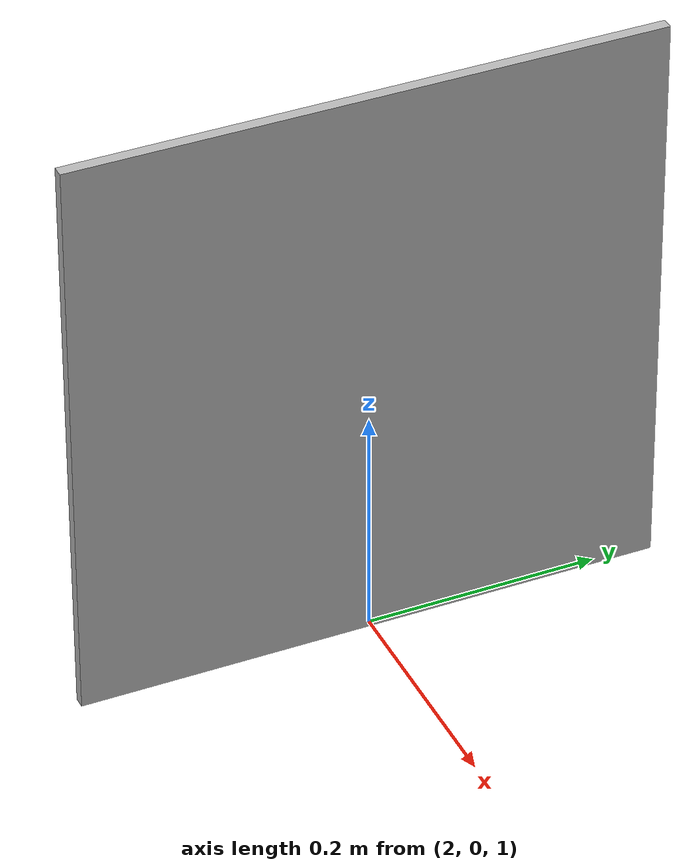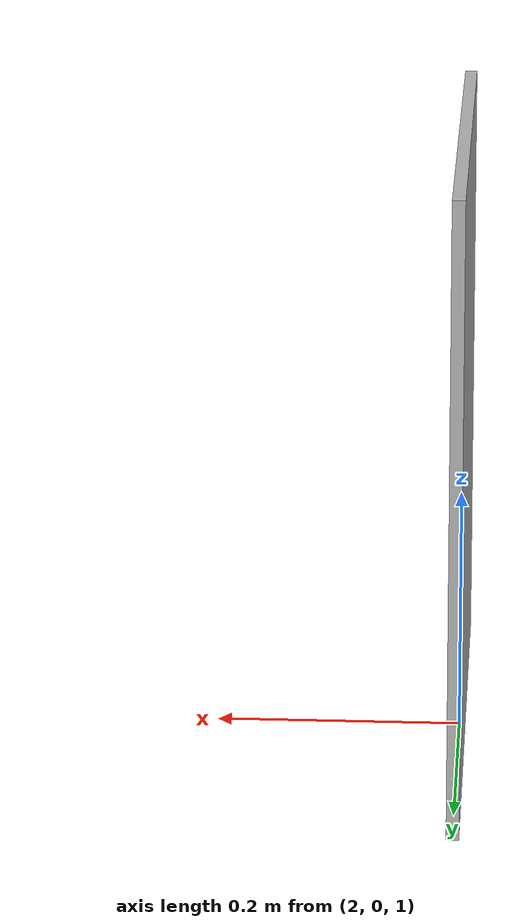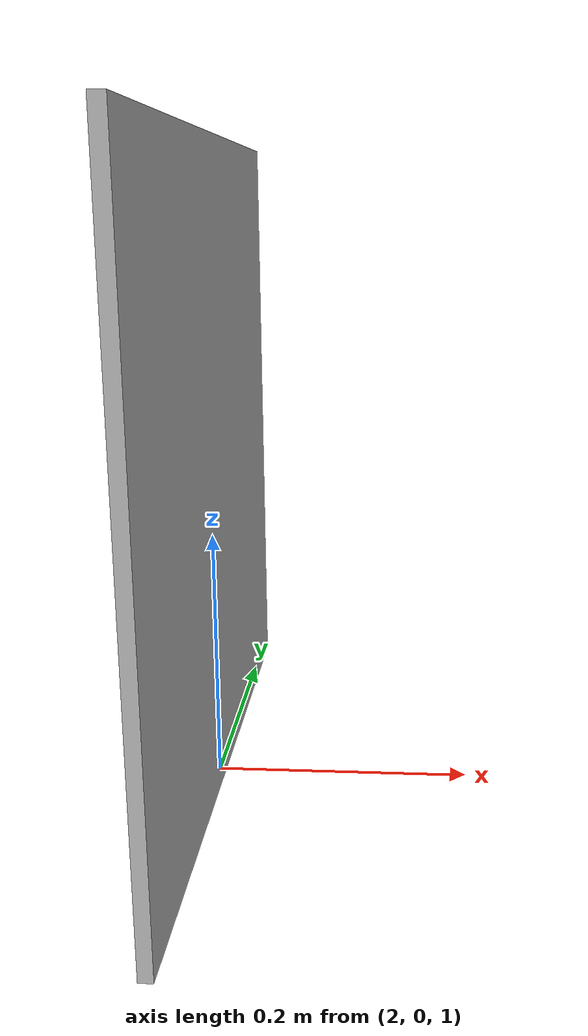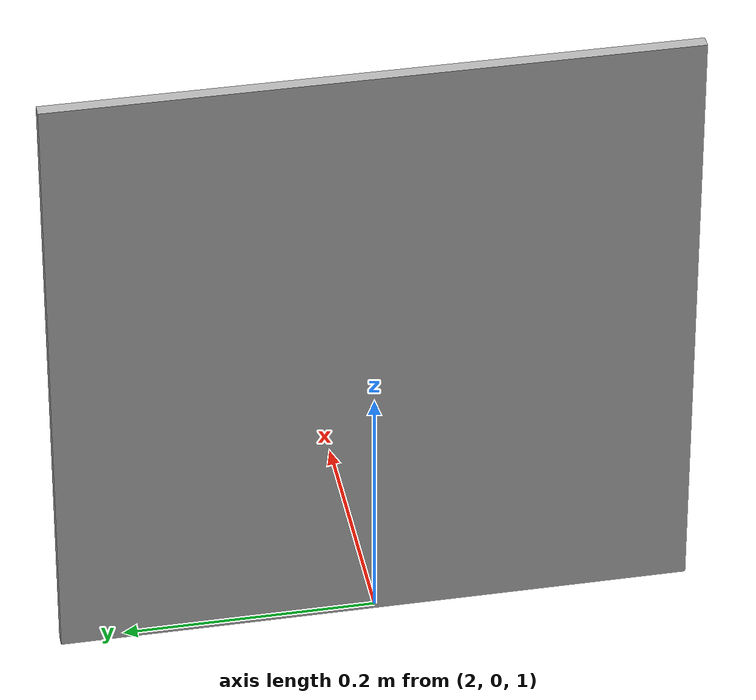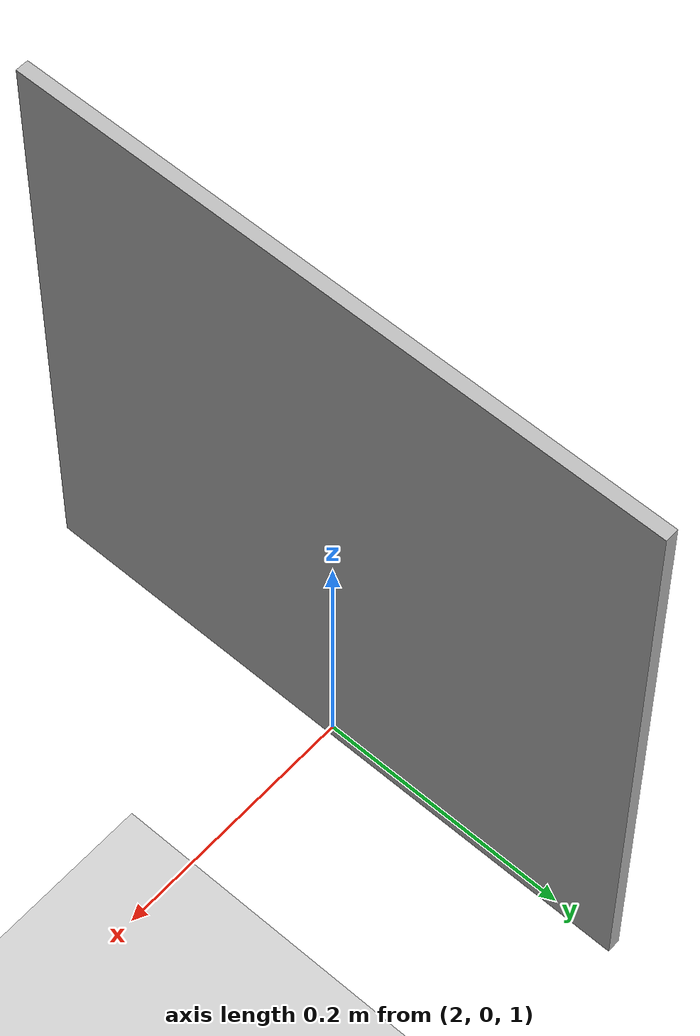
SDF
<?xml version="1.0" ?>
<sdf version="1.6">
  <world name="custom_world">
    <!-- Include ground plane -->
    <include>
      <uri>model://ground_plane</uri>
    </include>
    <!-- Include sun for lighting -->
    <include>
      <uri>model://sun</uri>
    </include>
    <!-- Include the simple box with package URI -->
    <model name="my_mesh">
      <pose>2.0 0 1.0  0 0 0</pose>
      <static>true</static>
      <link name="body">
        <visual name="visual">
          <geometry>
            <mesh><uri>src/robot_description/models/marker0/meshes/Marker0.dae</uri></mesh>
          </geometry>
        </visual>
      </link>
    </model>
  </world>
</sdf>
